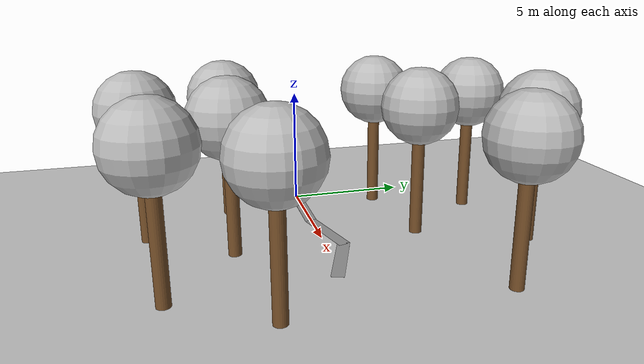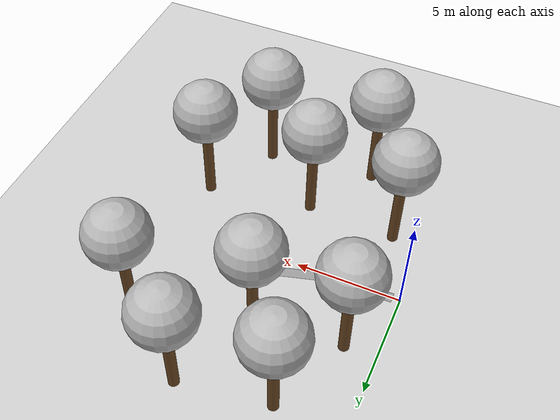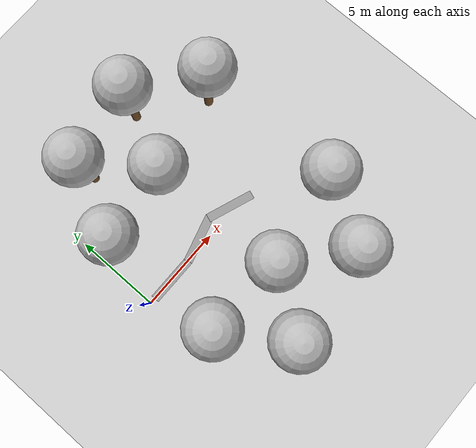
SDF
<sdf version="1.7">
 <world name="default">
  <physics type="ode">
   <ode>
    <solver>
     <type>quick</type>
     <iters>100</iters>
     <sor>1</sor>
     <use_dynamic_moi_rescaling>0</use_dynamic_moi_rescaling>
    </solver>
    <constraints>
     <cfm>0</cfm>
     <erp>0.9</erp>
     <contact_max_correcting_vel>0.1</contact_max_correcting_vel>
     <contact_surface_layer>0</contact_surface_layer>
    </constraints>
   </ode>
   <real_time_update_rate>-1</real_time_update_rate>
   <max_step_size>0.001</max_step_size>
   <real_time_factor>1</real_time_factor>
  </physics>
  <light name="sun" type="directional">
   <pose>0 0 10 0 -0 0</pose>
   <diffuse>0.8 0.8 0.8 1</diffuse>
   <specular>0.2 0.2 0.2 1</specular>
   <attenuation>
    <range>1000</range>
    <constant>0.9</constant>
    <linear>0.01</linear>
    <quadratic>0.001</quadratic>
   </attenuation>
   <direction>-0.5 0.1 -0.9</direction>
   <spot><inner_angle>0</inner_angle><outer_angle>0</outer_angle><falloff>0</falloff></spot>
  </light>
  <model name="ground_plane">
   <static>1</static>
   <link name="link">
    <collision name="collision">
     <geometry><plane><normal>0 0 1</normal><size>100 100</size></plane></geometry>
     <surface><friction><ode><mu>100</mu><mu2>50</mu2></ode></friction></surface>
    </collision>
    <visual name="visual">
     <cast_shadows>0</cast_shadows>
     <geometry><plane><normal>0 0 1</normal><size>100 100</size></plane></geometry>
     <material>
      <script><uri>file://media/materials/scripts/gazebo.material</uri><name>Gazebo/Grey</name></script>
     </material>
    </visual>
   </link>
  </model>
  <gravity>0 0 -9.8</gravity>
  <magnetic_field>6e-06 2.3e-05 -4.2e-05</magnetic_field>
  <atmosphere type="adiabatic"/>
  <scene><ambient>0.4 0.4 0.4 1</ambient><background>0.7 0.7 0.7 1</background><shadows>1</shadows></scene>
  <spherical_coordinates>
   <surface_model>EARTH_WGS84</surface_model>
   <latitude_deg>0</latitude_deg>
   <longitude_deg>0</longitude_deg>
   <elevation>0</elevation>
   <heading_deg>0</heading_deg>
  </spherical_coordinates>
  <model name="tree_simple">
   <static>1</static>
   <link name="link">
    <pose>0 0 0.1 0 -0 0</pose>
    <inertial>
     <mass>666</mass>
     <inertia>
      <ixx>0.0861167</ixx>
      <ixy>0</ixy>
      <ixz>0</ixz>
      <iyy>0.0861167</iyy>
      <iyz>0</iyz>
      <izz>0.0861167</izz>
     </inertia>
    </inertial>
    <collision name="collision_trunk">
     <pose>0 0 2 0 -0 0</pose>
     <geometry><cylinder><radius>0.25</radius><length>4</length></cylinder></geometry>
     <surface>
      <contact>
       <poissons_ratio>0.347</poissons_ratio>
       <elastic_modulus>8.8e+09</elastic_modulus>
       <ode><kp>100000</kp><kd>100</kd><max_vel>100</max_vel><min_depth>0.001</min_depth></ode>
      </contact>
      <friction>
       <torsional>
        <coefficient>1</coefficient>
        <use_patch_radius>0</use_patch_radius>
        <surface_radius>0.01</surface_radius>
       </torsional>
      </friction>
     </surface>
    </collision>
    <collision name="collision_treetop">
     <pose>0 0 5.2 0 -0 0</pose>
     <geometry><sphere><radius>1.5</radius></sphere></geometry>
     <surface>
      <contact>
       <poissons_ratio>0.347</poissons_ratio>
       <elastic_modulus>8.8e+09</elastic_modulus>
       <ode><kp>100000</kp><kd>100</kd><max_vel>100</max_vel><min_depth>0.001</min_depth></ode>
      </contact>
      <friction>
       <torsional>
        <coefficient>1</coefficient>
        <use_patch_radius>0</use_patch_radius>
        <surface_radius>0.01</surface_radius>
       </torsional>
      </friction>
     </surface>
    </collision>
    <visual name="trunk">
     <pose>0 0 2 0 -0 0</pose>
     <geometry><cylinder><radius>0.25</radius><length>4</length></cylinder></geometry>
     <material>
      <script>
       <uri>model://tree_simple/scripts</uri>
       <uri>model://tree_simple/materials/textures</uri>
       <name>TreeSimple/Trunk</name>
      </script>
     </material>
    </visual>
    <visual name="treetop">
     <pose>0 0 5.2 0 -0 0</pose>
     <geometry><sphere><radius>1.5</radius></sphere></geometry>
     <material>
      <script>
       <uri>model://tree_simple/scripts</uri>
       <uri>model://tree_simple/materials/textures</uri>
       <name>TreeSimple/Treetop</name>
      </script>
     </material>
    </visual>
   </link>
   <pose>1.44892 -3.29451 0 0 -0 0</pose>
  </model>
  <model name="tree_simple_clone">
   <static>1</static>
   <link name="link">
    <pose>0 0 0.1 0 -0 0</pose>
    <inertial>
     <mass>666</mass>
     <inertia>
      <ixx>0.0861167</ixx>
      <ixy>0</ixy>
      <ixz>0</ixz>
      <iyy>0.0861167</iyy>
      <iyz>0</iyz>
      <izz>0.0861167</izz>
     </inertia>
    </inertial>
    <collision name="collision_trunk">
     <pose>0 0 2 0 -0 0</pose>
     <geometry><cylinder><radius>0.25</radius><length>4</length></cylinder></geometry>
     <surface>
      <contact>
       <poissons_ratio>0.347</poissons_ratio>
       <elastic_modulus>8.8e+09</elastic_modulus>
       <ode><kp>100000</kp><kd>100</kd><max_vel>100</max_vel><min_depth>0.001</min_depth></ode>
      </contact>
      <friction>
       <torsional>
        <coefficient>1</coefficient>
        <use_patch_radius>0</use_patch_radius>
        <surface_radius>0.01</surface_radius>
       </torsional>
      </friction>
     </surface>
    </collision>
    <collision name="collision_treetop">
     <pose>0 0 5.2 0 -0 0</pose>
     <geometry><sphere><radius>1.5</radius></sphere></geometry>
     <surface>
      <contact>
       <poissons_ratio>0.347</poissons_ratio>
       <elastic_modulus>8.8e+09</elastic_modulus>
       <ode><kp>100000</kp><kd>100</kd><max_vel>100</max_vel><min_depth>0.001</min_depth></ode>
      </contact>
      <friction>
       <torsional>
        <coefficient>1</coefficient>
        <use_patch_radius>0</use_patch_radius>
        <surface_radius>0.01</surface_radius>
       </torsional>
      </friction>
     </surface>
    </collision>
    <visual name="trunk">
     <pose>0 0 2 0 -0 0</pose>
     <geometry><cylinder><radius>0.25</radius><length>4</length></cylinder></geometry>
     <material>
      <script>
       <uri>model://tree_simple/scripts</uri>
       <uri>model://tree_simple/materials/textures</uri>
       <name>TreeSimple/Trunk</name>
      </script>
     </material>
    </visual>
    <visual name="treetop">
     <pose>0 0 5.2 0 -0 0</pose>
     <geometry><sphere><radius>1.5</radius></sphere></geometry>
     <material>
      <script>
       <uri>model://tree_simple/scripts</uri>
       <uri>model://tree_simple/materials/textures</uri>
       <name>TreeSimple/Treetop</name>
      </script>
     </material>
    </visual>
   </link>
   <pose>5.79232 -3.49987 0 0 -0 0</pose>
  </model>
  <model name="tree_simple_clone_0">
   <static>1</static>
   <link name="link">
    <pose>0 0 0.1 0 -0 0</pose>
    <inertial>
     <mass>666</mass>
     <inertia>
      <ixx>0.0861167</ixx>
      <ixy>0</ixy>
      <ixz>0</ixz>
      <iyy>0.0861167</iyy>
      <iyz>0</iyz>
      <izz>0.0861167</izz>
     </inertia>
    </inertial>
    <collision name="collision_trunk">
     <pose>0 0 2 0 -0 0</pose>
     <geometry><cylinder><radius>0.25</radius><length>4</length></cylinder></geometry>
     <surface>
      <contact>
       <poissons_ratio>0.347</poissons_ratio>
       <elastic_modulus>8.8e+09</elastic_modulus>
       <ode><kp>100000</kp><kd>100</kd><max_vel>100</max_vel><min_depth>0.001</min_depth></ode>
      </contact>
      <friction>
       <torsional>
        <coefficient>1</coefficient>
        <use_patch_radius>0</use_patch_radius>
        <surface_radius>0.01</surface_radius>
       </torsional>
      </friction>
     </surface>
    </collision>
    <collision name="collision_treetop">
     <pose>0 0 5.2 0 -0 0</pose>
     <geometry><sphere><radius>1.5</radius></sphere></geometry>
     <surface>
      <contact>
       <poissons_ratio>0.347</poissons_ratio>
       <elastic_modulus>8.8e+09</elastic_modulus>
       <ode><kp>100000</kp><kd>100</kd><max_vel>100</max_vel><min_depth>0.001</min_depth></ode>
      </contact>
      <friction>
       <torsional>
        <coefficient>1</coefficient>
        <use_patch_radius>0</use_patch_radius>
        <surface_radius>0.01</surface_radius>
       </torsional>
      </friction>
     </surface>
    </collision>
    <visual name="trunk">
     <pose>0 0 2 0 -0 0</pose>
     <geometry><cylinder><radius>0.25</radius><length>4</length></cylinder></geometry>
     <material>
      <script>
       <uri>model://tree_simple/scripts</uri>
       <uri>model://tree_simple/materials/textures</uri>
       <name>TreeSimple/Trunk</name>
      </script>
     </material>
    </visual>
    <visual name="treetop">
     <pose>0 0 5.2 0 -0 0</pose>
     <geometry><sphere><radius>1.5</radius></sphere></geometry>
     <material>
      <script>
       <uri>model://tree_simple/scripts</uri>
       <uri>model://tree_simple/materials/textures</uri>
       <name>TreeSimple/Treetop</name>
      </script>
     </material>
    </visual>
   </link>
   <pose>10.8765 -2.68389 0 0 -0 0</pose>
  </model>
  <model name="tree_simple_clone_1">
   <static>1</static>
   <link name="link">
    <pose>0 0 0.1 0 -0 0</pose>
    <inertial>
     <mass>666</mass>
     <inertia>
      <ixx>0.0861167</ixx>
      <ixy>0</ixy>
      <ixz>0</ixz>
      <iyy>0.0861167</iyy>
      <iyz>0</iyz>
      <izz>0.0861167</izz>
     </inertia>
    </inertial>
    <collision name="collision_trunk">
     <pose>0 0 2 0 -0 0</pose>
     <geometry><cylinder><radius>0.25</radius><length>4</length></cylinder></geometry>
     <surface>
      <contact>
       <poissons_ratio>0.347</poissons_ratio>
       <elastic_modulus>8.8e+09</elastic_modulus>
       <ode><kp>100000</kp><kd>100</kd><max_vel>100</max_vel><min_depth>0.001</min_depth></ode>
      </contact>
      <friction>
       <torsional>
        <coefficient>1</coefficient>
        <use_patch_radius>0</use_patch_radius>
        <surface_radius>0.01</surface_radius>
       </torsional>
      </friction>
     </surface>
    </collision>
    <collision name="collision_treetop">
     <pose>0 0 5.2 0 -0 0</pose>
     <geometry><sphere><radius>1.5</radius></sphere></geometry>
     <surface>
      <contact>
       <poissons_ratio>0.347</poissons_ratio>
       <elastic_modulus>8.8e+09</elastic_modulus>
       <ode><kp>100000</kp><kd>100</kd><max_vel>100</max_vel><min_depth>0.001</min_depth></ode>
      </contact>
      <friction>
       <torsional>
        <coefficient>1</coefficient>
        <use_patch_radius>0</use_patch_radius>
        <surface_radius>0.01</surface_radius>
       </torsional>
      </friction>
     </surface>
    </collision>
    <visual name="trunk">
     <pose>0 0 2 0 -0 0</pose>
     <geometry><cylinder><radius>0.25</radius><length>4</length></cylinder></geometry>
     <material>
      <script>
       <uri>model://tree_simple/scripts</uri>
       <uri>model://tree_simple/materials/textures</uri>
       <name>TreeSimple/Trunk</name>
      </script>
     </material>
    </visual>
    <visual name="treetop">
     <pose>0 0 5.2 0 -0 0</pose>
     <geometry><sphere><radius>1.5</radius></sphere></geometry>
     <material>
      <script>
       <uri>model://tree_simple/scripts</uri>
       <uri>model://tree_simple/materials/textures</uri>
       <name>TreeSimple/Treetop</name>
      </script>
     </material>
    </visual>
   </link>
   <pose>1.4905 3.34156 0 0 -0 0</pose>
  </model>
  <model name="tree_simple_clone_2">
   <static>1</static>
   <link name="link">
    <pose>0 0 0.1 0 -0 0</pose>
    <inertial>
     <mass>666</mass>
     <inertia>
      <ixx>0.0861167</ixx>
      <ixy>0</ixy>
      <ixz>0</ixz>
      <iyy>0.0861167</iyy>
      <iyz>0</iyz>
      <izz>0.0861167</izz>
     </inertia>
    </inertial>
    <collision name="collision_trunk">
     <pose>0 0 2 0 -0 0</pose>
     <geometry><cylinder><radius>0.25</radius><length>4</length></cylinder></geometry>
     <surface>
      <contact>
       <poissons_ratio>0.347</poissons_ratio>
       <elastic_modulus>8.8e+09</elastic_modulus>
       <ode><kp>100000</kp><kd>100</kd><max_vel>100</max_vel><min_depth>0.001</min_depth></ode>
      </contact>
      <friction>
       <torsional>
        <coefficient>1</coefficient>
        <use_patch_radius>0</use_patch_radius>
        <surface_radius>0.01</surface_radius>
       </torsional>
      </friction>
     </surface>
    </collision>
    <collision name="collision_treetop">
     <pose>0 0 5.2 0 -0 0</pose>
     <geometry><sphere><radius>1.5</radius></sphere></geometry>
     <surface>
      <contact>
       <poissons_ratio>0.347</poissons_ratio>
       <elastic_modulus>8.8e+09</elastic_modulus>
       <ode><kp>100000</kp><kd>100</kd><max_vel>100</max_vel><min_depth>0.001</min_depth></ode>
      </contact>
      <friction>
       <torsional>
        <coefficient>1</coefficient>
        <use_patch_radius>0</use_patch_radius>
        <surface_radius>0.01</surface_radius>
       </torsional>
      </friction>
     </surface>
    </collision>
    <visual name="trunk">
     <pose>0 0 2 0 -0 0</pose>
     <geometry><cylinder><radius>0.25</radius><length>4</length></cylinder></geometry>
     <material>
      <script>
       <uri>model://tree_simple/scripts</uri>
       <uri>model://tree_simple/materials/textures</uri>
       <name>TreeSimple/Trunk</name>
      </script>
     </material>
    </visual>
    <visual name="treetop">
     <pose>0 0 5.2 0 -0 0</pose>
     <geometry><sphere><radius>1.5</radius></sphere></geometry>
     <material>
      <script>
       <uri>model://tree_simple/scripts</uri>
       <uri>model://tree_simple/materials/textures</uri>
       <name>TreeSimple/Treetop</name>
      </script>
     </material>
    </visual>
   </link>
   <pose>5.57941 3.81337 0 0 -0 0</pose>
  </model>
  <model name="tree_simple_clone_3">
   <static>1</static>
   <link name="link">
    <pose>0 0 0.1 0 -0 0</pose>
    <inertial>
     <mass>666</mass>
     <inertia>
      <ixx>0.0861167</ixx>
      <ixy>0</ixy>
      <ixz>0</ixz>
      <iyy>0.0861167</iyy>
      <iyz>0</iyz>
      <izz>0.0861167</izz>
     </inertia>
    </inertial>
    <collision name="collision_trunk">
     <pose>0 0 2 0 -0 0</pose>
     <geometry><cylinder><radius>0.25</radius><length>4</length></cylinder></geometry>
     <surface>
      <contact>
       <poissons_ratio>0.347</poissons_ratio>
       <elastic_modulus>8.8e+09</elastic_modulus>
       <ode><kp>100000</kp><kd>100</kd><max_vel>100</max_vel><min_depth>0.001</min_depth></ode>
      </contact>
      <friction>
       <torsional>
        <coefficient>1</coefficient>
        <use_patch_radius>0</use_patch_radius>
        <surface_radius>0.01</surface_radius>
       </torsional>
      </friction>
     </surface>
    </collision>
    <collision name="collision_treetop">
     <pose>0 0 5.2 0 -0 0</pose>
     <geometry><sphere><radius>1.5</radius></sphere></geometry>
     <surface>
      <contact>
       <poissons_ratio>0.347</poissons_ratio>
       <elastic_modulus>8.8e+09</elastic_modulus>
       <ode><kp>100000</kp><kd>100</kd><max_vel>100</max_vel><min_depth>0.001</min_depth></ode>
      </contact>
      <friction>
       <torsional>
        <coefficient>1</coefficient>
        <use_patch_radius>0</use_patch_radius>
        <surface_radius>0.01</surface_radius>
       </torsional>
      </friction>
     </surface>
    </collision>
    <visual name="trunk">
     <pose>0 0 2 0 -0 0</pose>
     <geometry><cylinder><radius>0.25</radius><length>4</length></cylinder></geometry>
     <material>
      <script>
       <uri>model://tree_simple/scripts</uri>
       <uri>model://tree_simple/materials/textures</uri>
       <name>TreeSimple/Trunk</name>
      </script>
     </material>
    </visual>
    <visual name="treetop">
     <pose>0 0 5.2 0 -0 0</pose>
     <geometry><sphere><radius>1.5</radius></sphere></geometry>
     <material>
      <script>
       <uri>model://tree_simple/scripts</uri>
       <uri>model://tree_simple/materials/textures</uri>
       <name>TreeSimple/Treetop</name>
      </script>
     </material>
    </visual>
   </link>
   <pose>10.8636 5.22877 0 0 -0 0</pose>
  </model>
  <model name="tree_simple_clone_8">
   <static>1</static>
   <link name="link">
    <pose>0 0 0.1 0 -0 0</pose>
    <inertial>
     <mass>666</mass>
     <inertia>
      <ixx>0.0861167</ixx>
      <ixy>0</ixy>
      <ixz>0</ixz>
      <iyy>0.0861167</iyy>
      <iyz>0</iyz>
      <izz>0.0861167</izz>
     </inertia>
    </inertial>
    <collision name="collision_trunk">
     <pose>0 0 2 0 -0 0</pose>
     <geometry><cylinder><radius>0.25</radius><length>4</length></cylinder></geometry>
     <surface>
      <contact>
       <poissons_ratio>0.347</poissons_ratio>
       <elastic_modulus>8.8e+09</elastic_modulus>
       <ode><kp>100000</kp><kd>100</kd><max_vel>100</max_vel><min_depth>0.001</min_depth></ode>
      </contact>
      <friction>
       <torsional>
        <coefficient>1</coefficient>
        <use_patch_radius>0</use_patch_radius>
        <surface_radius>0.01</surface_radius>
       </torsional>
      </friction>
     </surface>
    </collision>
    <collision name="collision_treetop">
     <pose>0 0 5.2 0 -0 0</pose>
     <geometry><sphere><radius>1.5</radius></sphere></geometry>
     <surface>
      <contact>
       <poissons_ratio>0.347</poissons_ratio>
       <elastic_modulus>8.8e+09</elastic_modulus>
       <ode><kp>100000</kp><kd>100</kd><max_vel>100</max_vel><min_depth>0.001</min_depth></ode>
      </contact>
      <friction>
       <torsional>
        <coefficient>1</coefficient>
        <use_patch_radius>0</use_patch_radius>
        <surface_radius>0.01</surface_radius>
       </torsional>
      </friction>
     </surface>
    </collision>
    <visual name="trunk">
     <pose>0 0 2 0 -0 0</pose>
     <geometry><cylinder><radius>0.25</radius><length>4</length></cylinder></geometry>
     <material>
      <script>
       <uri>model://tree_simple/scripts</uri>
       <uri>model://tree_simple/materials/textures</uri>
       <name>TreeSimple/Trunk</name>
      </script>
     </material>
    </visual>
    <visual name="treetop">
     <pose>0 0 5.2 0 -0 0</pose>
     <geometry><sphere><radius>1.5</radius></sphere></geometry>
     <material>
      <script>
       <uri>model://tree_simple/scripts</uri>
       <uri>model://tree_simple/materials/textures</uri>
       <name>TreeSimple/Treetop</name>
      </script>
     </material>
    </visual>
   </link>
   <pose>3.16384 7.13224 0 0 -0 0</pose>
  </model>
  <model name="tree_simple_clone_9">
   <static>1</static>
   <link name="link">
    <pose>0 0 0.1 0 -0 0</pose>
    <inertial>
     <mass>666</mass>
     <inertia>
      <ixx>0.0861167</ixx>
      <ixy>0</ixy>
      <ixz>0</ixz>
      <iyy>0.0861167</iyy>
      <iyz>0</iyz>
      <izz>0.0861167</izz>
     </inertia>
    </inertial>
    <collision name="collision_trunk">
     <pose>0 0 2 0 -0 0</pose>
     <geometry><cylinder><radius>0.25</radius><length>4</length></cylinder></geometry>
     <surface>
      <contact>
       <poissons_ratio>0.347</poissons_ratio>
       <elastic_modulus>8.8e+09</elastic_modulus>
       <ode><kp>100000</kp><kd>100</kd><max_vel>100</max_vel><min_depth>0.001</min_depth></ode>
      </contact>
      <friction>
       <torsional>
        <coefficient>1</coefficient>
        <use_patch_radius>0</use_patch_radius>
        <surface_radius>0.01</surface_radius>
       </torsional>
      </friction>
     </surface>
    </collision>
    <collision name="collision_treetop">
     <pose>0 0 5.2 0 -0 0</pose>
     <geometry><sphere><radius>1.5</radius></sphere></geometry>
     <surface>
      <contact>
       <poissons_ratio>0.347</poissons_ratio>
       <elastic_modulus>8.8e+09</elastic_modulus>
       <ode><kp>100000</kp><kd>100</kd><max_vel>100</max_vel><min_depth>0.001</min_depth></ode>
      </contact>
      <friction>
       <torsional>
        <coefficient>1</coefficient>
        <use_patch_radius>0</use_patch_radius>
        <surface_radius>0.01</surface_radius>
       </torsional>
      </friction>
     </surface>
    </collision>
    <visual name="trunk">
     <pose>0 0 2 0 -0 0</pose>
     <geometry><cylinder><radius>0.25</radius><length>4</length></cylinder></geometry>
     <material>
      <script>
       <uri>model://tree_simple/scripts</uri>
       <uri>model://tree_simple/materials/textures</uri>
       <name>TreeSimple/Trunk</name>
      </script>
     </material>
    </visual>
    <visual name="treetop">
     <pose>0 0 5.2 0 -0 0</pose>
     <geometry><sphere><radius>1.5</radius></sphere></geometry>
     <material>
      <script>
       <uri>model://tree_simple/scripts</uri>
       <uri>model://tree_simple/materials/textures</uri>
       <name>TreeSimple/Treetop</name>
      </script>
     </material>
    </visual>
   </link>
   <pose>7.41926 7.79415 0 0 -0 0</pose>
  </model>
  <model name="tree_simple_clone_10">
   <static>1</static>
   <link name="link">
    <pose>0 0 0.1 0 -0 0</pose>
    <inertial>
     <mass>666</mass>
     <inertia>
      <ixx>0.0861167</ixx>
      <ixy>0</ixy>
      <ixz>0</ixz>
      <iyy>0.0861167</iyy>
      <iyz>0</iyz>
      <izz>0.0861167</izz>
     </inertia>
    </inertial>
    <collision name="collision_trunk">
     <pose>0 0 2 0 -0 0</pose>
     <geometry><cylinder><radius>0.25</radius><length>4</length></cylinder></geometry>
     <surface>
      <contact>
       <poissons_ratio>0.347</poissons_ratio>
       <elastic_modulus>8.8e+09</elastic_modulus>
       <ode><kp>100000</kp><kd>100</kd><max_vel>100</max_vel><min_depth>0.001</min_depth></ode>
      </contact>
      <friction>
       <torsional>
        <coefficient>1</coefficient>
        <use_patch_radius>0</use_patch_radius>
        <surface_radius>0.01</surface_radius>
       </torsional>
      </friction>
     </surface>
    </collision>
    <collision name="collision_treetop">
     <pose>0 0 5.2 0 -0 0</pose>
     <geometry><sphere><radius>1.5</radius></sphere></geometry>
     <surface>
      <contact>
       <poissons_ratio>0.347</poissons_ratio>
       <elastic_modulus>8.8e+09</elastic_modulus>
       <ode><kp>100000</kp><kd>100</kd><max_vel>100</max_vel><min_depth>0.001</min_depth></ode>
      </contact>
      <friction>
       <torsional>
        <coefficient>1</coefficient>
        <use_patch_radius>0</use_patch_radius>
        <surface_radius>0.01</surface_radius>
       </torsional>
      </friction>
     </surface>
    </collision>
    <visual name="trunk">
     <pose>0 0 2 0 -0 0</pose>
     <geometry><cylinder><radius>0.25</radius><length>4</length></cylinder></geometry>
     <material>
      <script>
       <uri>model://tree_simple/scripts</uri>
       <uri>model://tree_simple/materials/textures</uri>
       <name>TreeSimple/Trunk</name>
      </script>
     </material>
    </visual>
    <visual name="treetop">
     <pose>0 0 5.2 0 -0 0</pose>
     <geometry><sphere><radius>1.5</radius></sphere></geometry>
     <material>
      <script>
       <uri>model://tree_simple/scripts</uri>
       <uri>model://tree_simple/materials/textures</uri>
       <name>TreeSimple/Treetop</name>
      </script>
     </material>
    </visual>
   </link>
   <pose>8.93205 -6.04376 0 0 -0 0</pose>
  </model>
  <model name="tree_simple_clone_11">
   <static>1</static>
   <link name="link">
    <pose>0 0 0.1 0 -0 0</pose>
    <inertial>
     <mass>666</mass>
     <inertia>
      <ixx>0.0861167</ixx>
      <ixy>0</ixy>
      <ixz>0</ixz>
      <iyy>0.0861167</iyy>
      <iyz>0</iyz>
      <izz>0.0861167</izz>
     </inertia>
    </inertial>
    <collision name="collision_trunk">
     <pose>0 0 2 0 -0 0</pose>
     <geometry><cylinder><radius>0.25</radius><length>4</length></cylinder></geometry>
     <surface>
      <contact>
       <poissons_ratio>0.347</poissons_ratio>
       <elastic_modulus>8.8e+09</elastic_modulus>
       <ode><kp>100000</kp><kd>100</kd><max_vel>100</max_vel><min_depth>0.001</min_depth></ode>
      </contact>
      <friction>
       <torsional>
        <coefficient>1</coefficient>
        <use_patch_radius>0</use_patch_radius>
        <surface_radius>0.01</surface_radius>
       </torsional>
      </friction>
     </surface>
    </collision>
    <collision name="collision_treetop">
     <pose>0 0 5.2 0 -0 0</pose>
     <geometry><sphere><radius>1.5</radius></sphere></geometry>
     <surface>
      <contact>
       <poissons_ratio>0.347</poissons_ratio>
       <elastic_modulus>8.8e+09</elastic_modulus>
       <ode><kp>100000</kp><kd>100</kd><max_vel>100</max_vel><min_depth>0.001</min_depth></ode>
      </contact>
      <friction>
       <torsional>
        <coefficient>1</coefficient>
        <use_patch_radius>0</use_patch_radius>
        <surface_radius>0.01</surface_radius>
       </torsional>
      </friction>
     </surface>
    </collision>
    <visual name="trunk">
     <pose>0 0 2 0 -0 0</pose>
     <geometry><cylinder><radius>0.25</radius><length>4</length></cylinder></geometry>
     <material>
      <script>
       <uri>model://tree_simple/scripts</uri>
       <uri>model://tree_simple/materials/textures</uri>
       <name>TreeSimple/Trunk</name>
      </script>
     </material>
    </visual>
    <visual name="treetop">
     <pose>0 0 5.2 0 -0 0</pose>
     <geometry><sphere><radius>1.5</radius></sphere></geometry>
     <material>
      <script>
       <uri>model://tree_simple/scripts</uri>
       <uri>model://tree_simple/materials/textures</uri>
       <name>TreeSimple/Treetop</name>
      </script>
     </material>
    </visual>
   </link>
   <pose>3.66797 -6.67427 0 0 -0 0</pose>
  </model>
  <model name="white_road">
   <pose>1.76427 1.3476 0 0 -0 0</pose>
   <link name="Wall_0">
    <collision name="Wall_0_Collision">
     <geometry><box><size>2.85 0.5 0.001</size></box></geometry>
     <pose>0 0 0.0005 0 -0 0</pose>
    </collision>
    <visual name="Wall_0_Visual">
     <pose>0 0 0.0005 0 -0 0</pose>
     <geometry><box><size>2.85 0.5 0.001</size></box></geometry>
     <material>
      <script><uri>file://media/materials/scripts/gazebo.material</uri><name>Gazebo/Grey</name></script>
      <ambient>1 1 1 1</ambient>
     </material>
     <meta><layer>0</layer></meta>
    </visual>
    <pose>0 -1.35 0 0 -0 3.14159</pose>
   </link>
   <static>1</static>
  </model>
  <model name="white_road_0">
   <pose>4.10506 1.66949 0 0 -0 0.271155</pose>
   <link name="Wall_0">
    <collision name="Wall_0_Collision">
     <geometry><box><size>2.85 0.5 0.001</size></box></geometry>
     <pose>0 0 0.0005 0 -0 0</pose>
    </collision>
    <visual name="Wall_0_Visual">
     <pose>0 0 0.0005 0 -0 0</pose>
     <geometry><box><size>2.85 0.5 0.001</size></box></geometry>
     <material>
      <script><uri>file://media/materials/scripts/gazebo.material</uri><name>Gazebo/Grey</name></script>
      <ambient>1 1 1 1</ambient>
     </material>
     <meta><layer>0</layer></meta>
    </visual>
    <pose>0 -1.35 0 0 -0 3.14159</pose>
   </link>
   <static>1</static>
  </model>
  <model name="white_road_1">
   <pose>7.48797 1.51558 0 0 0 -0.35385</pose>
   <link name="Wall_0">
    <collision name="Wall_0_Collision">
     <geometry><box><size>2.85 0.5 0.001</size></box></geometry>
     <pose>0 0 0.0005 0 -0 0</pose>
    </collision>
    <visual name="Wall_0_Visual">
     <pose>0 0 0.0005 0 -0 0</pose>
     <geometry><box><size>2.85 0.5 0.001</size></box></geometry>
     <material>
      <script><uri>file://media/materials/scripts/gazebo.material</uri><name>Gazebo/Grey</name></script>
      <ambient>1 1 1 1</ambient>
     </material>
     <meta><layer>0</layer></meta>
    </visual>
    <pose>0 -1.35 0 0 -0 3.14159</pose>
   </link>
   <static>1</static>
  </model>
  <light name="user_spot_light_0" type="spot">
   <pose>0.841853 -0.001799 1 0 -0 0</pose>
   <diffuse>0.5 0.5 0.5 1</diffuse>
   <specular>0.1 0.1 0.1 1</specular>
   <direction>0 0 -1</direction>
   <attenuation>
    <range>20</range>
    <constant>0.5</constant>
    <linear>0.01</linear>
    <quadratic>0.001</quadratic>
   </attenuation>
   <cast_shadows>0</cast_shadows>
   <spot><inner_angle>0.6</inner_angle><outer_angle>1</outer_angle><falloff>1</falloff></spot>
  </light>
  <light name="user_spot_light_0_clone" type="spot">
   <pose>1.38297 0.016584 0.8 0 -0 0</pose>
   <diffuse>0.498039 0.498039 0.498039 1</diffuse>
   <specular>0.0980392 0.0980392 0.0980392 1</specular>
   <direction>0 0 -1</direction>
   <attenuation>
    <range>20</range>
    <constant>0.5</constant>
    <linear>0.01</linear>
    <quadratic>0.001</quadratic>
   </attenuation>
   <cast_shadows>0</cast_shadows>
   <spot><inner_angle>0.6</inner_angle><outer_angle>1</outer_angle><falloff>1</falloff></spot>
  </light>
  <light name="user_spot_light_0_clone_0" type="spot">
   <pose>1.93285 0.016583 0.8 0 -0 0</pose>
   <diffuse>0.498039 0.498039 0.498039 1</diffuse>
   <specular>0.0980392 0.0980392 0.0980392 1</specular>
   <direction>0 0 -1</direction>
   <attenuation>
    <range>20</range>
    <constant>0.5</constant>
    <linear>0.01</linear>
    <quadratic>0.001</quadratic>
   </attenuation>
   <cast_shadows>0</cast_shadows>
   <spot><inner_angle>0.6</inner_angle><outer_angle>1</outer_angle><falloff>1</falloff></spot>
  </light>
  <light name="user_spot_light_0_clone_1" type="spot">
   <pose>2.03043 0.007726 0.8 0 -0 0</pose>
   <diffuse>0.498039 0.498039 0.498039 1</diffuse>
   <specular>0.0980392 0.0980392 0.0980392 1</specular>
   <direction>0 0 -1</direction>
   <attenuation>
    <range>20</range>
    <constant>0.5</constant>
    <linear>0.01</linear>
    <quadratic>0.001</quadratic>
   </attenuation>
   <cast_shadows>0</cast_shadows>
   <spot><inner_angle>0.6</inner_angle><outer_angle>1</outer_angle><falloff>1</falloff></spot>
  </light>
  <light name="user_spot_light_0_clone_2" type="spot">
   <pose>2.5537 0.007726 0.8 0 -0 0</pose>
   <diffuse>0.498039 0.498039 0.498039 1</diffuse>
   <specular>0.0980392 0.0980392 0.0980392 1</specular>
   <direction>0 0 -1</direction>
   <attenuation>
    <range>20</range>
    <constant>0.5</constant>
    <linear>0.01</linear>
    <quadratic>0.001</quadratic>
   </attenuation>
   <cast_shadows>0</cast_shadows>
   <spot><inner_angle>0.6</inner_angle><outer_angle>1</outer_angle><falloff>1</falloff></spot>
  </light>
  <light name="user_spot_light_0_clone_3" type="spot">
   <pose>3.16012 0.019265 0.8 0 -0 0</pose>
   <diffuse>0.498039 0.498039 0.498039 1</diffuse>
   <specular>0.0980392 0.0980392 0.0980392 1</specular>
   <direction>0 0 -1</direction>
   <attenuation>
    <range>20</range>
    <constant>0.5</constant>
    <linear>0.01</linear>
    <quadratic>0.001</quadratic>
   </attenuation>
   <cast_shadows>0</cast_shadows>
   <spot><inner_angle>0.6</inner_angle><outer_angle>1</outer_angle><falloff>1</falloff></spot>
  </light>
  <light name="user_spot_light_0_clone_1_clone" type="spot">
   <pose>4.68065 -1.33708 0.8 0 -0 0</pose>
   <diffuse>0.498039 0.498039 0.498039 1</diffuse>
   <specular>0.0980392 0.0980392 0.0980392 1</specular>
   <direction>0 0 -1</direction>
   <attenuation>
    <range>20</range>
    <constant>0.5</constant>
    <linear>0.01</linear>
    <quadratic>0.001</quadratic>
   </attenuation>
   <cast_shadows>0</cast_shadows>
   <spot><inner_angle>0.6</inner_angle><outer_angle>1</outer_angle><falloff>1</falloff></spot>
  </light>
  <light name="user_spot_light_0_clone_1_clone_0" type="spot">
   <pose>4.34355 -1.23793 0.8 0 -0 0</pose>
   <diffuse>0.498039 0.498039 0.498039 1</diffuse>
   <specular>0.0980392 0.0980392 0.0980392 1</specular>
   <direction>0 0 -1</direction>
   <attenuation>
    <range>20</range>
    <constant>0.5</constant>
    <linear>0.01</linear>
    <quadratic>0.001</quadratic>
   </attenuation>
   <cast_shadows>0</cast_shadows>
   <spot><inner_angle>0.6</inner_angle><outer_angle>1</outer_angle><falloff>1</falloff></spot>
  </light>
  <light name="user_spot_light_0_clone_1_clone_1" type="spot">
   <pose>3.64756 0.144095 0.8 0 -0 0</pose>
   <diffuse>0.498039 0.498039 0.498039 1</diffuse>
   <specular>0.0980392 0.0980392 0.0980392 1</specular>
   <direction>0 0 -1</direction>
   <attenuation>
    <range>20</range>
    <constant>0.5</constant>
    <linear>0.01</linear>
    <quadratic>0.001</quadratic>
   </attenuation>
   <cast_shadows>0</cast_shadows>
   <spot><inner_angle>0.6</inner_angle><outer_angle>1</outer_angle><falloff>1</falloff></spot>
  </light>
  <light name="user_spot_light_0_clone_1_clone_2" type="spot">
   <pose>4.13474 0.323057 0.8 0 -0 0</pose>
   <diffuse>0.498039 0.498039 0.498039 1</diffuse>
   <specular>0.0980392 0.0980392 0.0980392 1</specular>
   <direction>0 0 -1</direction>
   <attenuation>
    <range>20</range>
    <constant>0.5</constant>
    <linear>0.01</linear>
    <quadratic>0.001</quadratic>
   </attenuation>
   <cast_shadows>0</cast_shadows>
   <spot><inner_angle>0.6</inner_angle><outer_angle>1</outer_angle><falloff>1</falloff></spot>
  </light>
  <light name="user_spot_light_0_clone_1_clone_3" type="spot">
   <pose>4.54239 0.442365 0.8 0 -0 0</pose>
   <diffuse>0.498039 0.498039 0.498039 1</diffuse>
   <specular>0.0980392 0.0980392 0.0980392 1</specular>
   <direction>0 0 -1</direction>
   <attenuation>
    <range>20</range>
    <constant>0.5</constant>
    <linear>0.01</linear>
    <quadratic>0.001</quadratic>
   </attenuation>
   <cast_shadows>0</cast_shadows>
   <spot><inner_angle>0.6</inner_angle><outer_angle>1</outer_angle><falloff>1</falloff></spot>
  </light>
  <light name="user_spot_light_0_clone_1_clone_4" type="spot">
   <pose>5.01952 0.561522 0.8 0 -0 0</pose>
   <diffuse>0.498039 0.498039 0.498039 1</diffuse>
   <specular>0.0980392 0.0980392 0.0980392 1</specular>
   <direction>0 0 -1</direction>
   <attenuation>
    <range>20</range>
    <constant>0.5</constant>
    <linear>0.01</linear>
    <quadratic>0.001</quadratic>
   </attenuation>
   <cast_shadows>0</cast_shadows>
   <spot><inner_angle>0.6</inner_angle><outer_angle>1</outer_angle><falloff>1</falloff></spot>
  </light>
  <light name="user_spot_light_0_clone_1_clone_5" type="spot">
   <pose>5.59775 0.681158 0.8 0 -0 0</pose>
   <diffuse>0.498039 0.498039 0.498039 1</diffuse>
   <specular>0.0980392 0.0980392 0.0980392 1</specular>
   <direction>0 0 -1</direction>
   <attenuation>
    <range>20</range>
    <constant>0.5</constant>
    <linear>0.01</linear>
    <quadratic>0.001</quadratic>
   </attenuation>
   <cast_shadows>0</cast_shadows>
   <spot><inner_angle>0.6</inner_angle><outer_angle>1</outer_angle><falloff>1</falloff></spot>
  </light>
  <light name="user_spot_light_0_clone_1_clone_6" type="spot">
   <pose>6.08628 0.591431 0.8 0 -0 0</pose>
   <diffuse>0.498039 0.498039 0.498039 1</diffuse>
   <specular>0.0980392 0.0980392 0.0980392 1</specular>
   <direction>0 0 -1</direction>
   <attenuation>
    <range>20</range>
    <constant>0.5</constant>
    <linear>0.01</linear>
    <quadratic>0.001</quadratic>
   </attenuation>
   <cast_shadows>0</cast_shadows>
   <spot><inner_angle>0.6</inner_angle><outer_angle>1</outer_angle><falloff>1</falloff></spot>
  </light>
  <light name="user_spot_light_0_clone_1_clone_7" type="spot">
   <pose>6.47267 0.447923 0.8 0 -0 0</pose>
   <diffuse>0.498039 0.498039 0.498039 1</diffuse>
   <specular>0.0980392 0.0980392 0.0980392 1</specular>
   <direction>0 0 -1</direction>
   <attenuation>
    <range>20</range>
    <constant>0.5</constant>
    <linear>0.01</linear>
    <quadratic>0.001</quadratic>
   </attenuation>
   <cast_shadows>0</cast_shadows>
   <spot><inner_angle>0.6</inner_angle><outer_angle>1</outer_angle><falloff>1</falloff></spot>
  </light>
  <light name="user_spot_light_0_clone_1_clone_8" type="spot">
   <pose>6.89135 0.288421 0.8 0 -0 0</pose>
   <diffuse>0.498039 0.498039 0.498039 1</diffuse>
   <specular>0.0980392 0.0980392 0.0980392 1</specular>
   <direction>0 0 -1</direction>
   <attenuation>
    <range>20</range>
    <constant>0.5</constant>
    <linear>0.01</linear>
    <quadratic>0.001</quadratic>
   </attenuation>
   <cast_shadows>0</cast_shadows>
   <spot><inner_angle>0.6</inner_angle><outer_angle>1</outer_angle><falloff>1</falloff></spot>
  </light>
  <light name="user_spot_light_0_clone_1_clone_9" type="spot">
   <pose>7.26032 0.138863 0.8 0 -0 0</pose>
   <diffuse>0.498039 0.498039 0.498039 1</diffuse>
   <specular>0.0980392 0.0980392 0.0980392 1</specular>
   <direction>0 0 -1</direction>
   <attenuation>
    <range>20</range>
    <constant>0.5</constant>
    <linear>0.01</linear>
    <quadratic>0.001</quadratic>
   </attenuation>
   <cast_shadows>0</cast_shadows>
   <spot><inner_angle>0.6</inner_angle><outer_angle>1</outer_angle><falloff>1</falloff></spot>
  </light>
  <light name="user_spot_light_0_clone_1_clone_10" type="spot">
   <pose>7.66951 0.035328 0.8 0 -0 0</pose>
   <diffuse>0.498039 0.498039 0.498039 1</diffuse>
   <specular>0.0980392 0.0980392 0.0980392 1</specular>
   <direction>0 0 -1</direction>
   <attenuation>
    <range>20</range>
    <constant>0.5</constant>
    <linear>0.01</linear>
    <quadratic>0.001</quadratic>
   </attenuation>
   <cast_shadows>0</cast_shadows>
   <spot><inner_angle>0.6</inner_angle><outer_angle>1</outer_angle><falloff>1</falloff></spot>
  </light>
  <light name="user_spot_light_0_clone_1_clone_11" type="spot">
   <pose>8.0388 -0.14399 0.8 0 -0 0</pose>
   <diffuse>0.498039 0.498039 0.498039 1</diffuse>
   <specular>0.0980392 0.0980392 0.0980392 1</specular>
   <direction>0 0 -1</direction>
   <attenuation>
    <range>20</range>
    <constant>0.5</constant>
    <linear>0.01</linear>
    <quadratic>0.001</quadratic>
   </attenuation>
   <cast_shadows>0</cast_shadows>
   <spot><inner_angle>0.6</inner_angle><outer_angle>1</outer_angle><falloff>1</falloff></spot>
  </light>
  <light name="user_spot_light_1" type="spot">
   <pose>1.00702 0.016631 1 0 -0 0</pose>
   <diffuse>0.5 0.5 0.5 1</diffuse>
   <specular>0.1 0.1 0.1 1</specular>
   <direction>0 0 -1</direction>
   <attenuation>
    <range>20</range>
    <constant>0.5</constant>
    <linear>0.01</linear>
    <quadratic>0.001</quadratic>
   </attenuation>
   <cast_shadows>0</cast_shadows>
   <spot><inner_angle>0.6</inner_angle><outer_angle>1</outer_angle><falloff>1</falloff></spot>
  </light>
  <light name="user_spot_light_2" type="spot">
   <pose>1.591 0.016631 1 0 -0 0</pose>
   <diffuse>0.5 0.5 0.5 1</diffuse>
   <specular>0.1 0.1 0.1 1</specular>
   <direction>0 0 -1</direction>
   <attenuation>
    <range>20</range>
    <constant>0.5</constant>
    <linear>0.01</linear>
    <quadratic>0.001</quadratic>
   </attenuation>
   <cast_shadows>0</cast_shadows>
   <spot><inner_angle>0.6</inner_angle><outer_angle>1</outer_angle><falloff>1</falloff></spot>
  </light>
  <light name="user_spot_light_3" type="spot">
   <pose>2.35264 0.025094 1 0 -0 0</pose>
   <diffuse>0.5 0.5 0.5 1</diffuse>
   <specular>0.1 0.1 0.1 1</specular>
   <direction>0 0 -1</direction>
   <attenuation>
    <range>20</range>
    <constant>0.5</constant>
    <linear>0.01</linear>
    <quadratic>0.001</quadratic>
   </attenuation>
   <cast_shadows>0</cast_shadows>
   <spot><inner_angle>0.6</inner_angle><outer_angle>1</outer_angle><falloff>1</falloff></spot>
  </light>
  <light name="user_spot_light_4" type="spot">
   <pose>2.86892 0.033557 1 0 -0 0</pose>
   <diffuse>0.5 0.5 0.5 1</diffuse>
   <specular>0.1 0.1 0.1 1</specular>
   <direction>0 0 -1</direction>
   <attenuation>
    <range>20</range>
    <constant>0.5</constant>
    <linear>0.01</linear>
    <quadratic>0.001</quadratic>
   </attenuation>
   <cast_shadows>0</cast_shadows>
   <spot><inner_angle>0.6</inner_angle><outer_angle>1</outer_angle><falloff>1</falloff></spot>
  </light>
  <light name="user_spot_light_5" type="spot">
   <pose>3.36821 0.109722 1 0 -0 0</pose>
   <diffuse>0.5 0.5 0.5 1</diffuse>
   <specular>0.1 0.1 0.1 1</specular>
   <direction>0 0 -1</direction>
   <attenuation>
    <range>20</range>
    <constant>0.5</constant>
    <linear>0.01</linear>
    <quadratic>0.001</quadratic>
   </attenuation>
   <cast_shadows>0</cast_shadows>
   <spot><inner_angle>0.6</inner_angle><outer_angle>1</outer_angle><falloff>1</falloff></spot>
  </light>
  <light name="user_spot_light_6" type="spot">
   <pose>3.97759 0.278993 1 0 -0 0</pose>
   <diffuse>0.5 0.5 0.5 1</diffuse>
   <specular>0.1 0.1 0.1 1</specular>
   <direction>0 0 -1</direction>
   <attenuation>
    <range>20</range>
    <constant>0.5</constant>
    <linear>0.01</linear>
    <quadratic>0.001</quadratic>
   </attenuation>
   <cast_shadows>0</cast_shadows>
   <spot><inner_angle>0.6</inner_angle><outer_angle>1</outer_angle><falloff>1</falloff></spot>
  </light>
  <light name="user_spot_light_7" type="spot">
   <pose>4.42608 0.397472 1 0 -0 0</pose>
   <diffuse>0.5 0.5 0.5 1</diffuse>
   <specular>0.1 0.1 0.1 1</specular>
   <direction>0 0 -1</direction>
   <attenuation>
    <range>20</range>
    <constant>0.5</constant>
    <linear>0.01</linear>
    <quadratic>0.001</quadratic>
   </attenuation>
   <cast_shadows>0</cast_shadows>
   <spot><inner_angle>0.6</inner_angle><outer_angle>1</outer_angle><falloff>1</falloff></spot>
  </light>
  <light name="user_spot_light_8" type="spot">
   <pose>4.89157 0.499026 1 0 -0 0</pose>
   <diffuse>0.5 0.5 0.5 1</diffuse>
   <specular>0.1 0.1 0.1 1</specular>
   <direction>0 0 -1</direction>
   <attenuation>
    <range>20</range>
    <constant>0.5</constant>
    <linear>0.01</linear>
    <quadratic>0.001</quadratic>
   </attenuation>
   <cast_shadows>0</cast_shadows>
   <spot><inner_angle>0.6</inner_angle><outer_angle>1</outer_angle><falloff>1</falloff></spot>
  </light>
  <light name="user_spot_light_9" type="spot">
   <pose>5.46705 0.685215 1 0 -0 0</pose>
   <diffuse>0.5 0.5 0.5 1</diffuse>
   <specular>0.1 0.1 0.1 1</specular>
   <direction>0 0 -1</direction>
   <attenuation>
    <range>20</range>
    <constant>0.5</constant>
    <linear>0.01</linear>
    <quadratic>0.001</quadratic>
   </attenuation>
   <cast_shadows>0</cast_shadows>
   <spot><inner_angle>0.6</inner_angle><outer_angle>1</outer_angle><falloff>1</falloff></spot>
  </light>
  <light name="user_spot_light_10" type="spot">
   <pose>5.85616 0.669963 1 0 -0 0</pose>
   <diffuse>0.5 0.5 0.5 1</diffuse>
   <specular>0.1 0.1 0.1 1</specular>
   <direction>0 0 -1</direction>
   <attenuation>
    <range>20</range>
    <constant>0.5</constant>
    <linear>0.01</linear>
    <quadratic>0.001</quadratic>
   </attenuation>
   <cast_shadows>0</cast_shadows>
   <spot><inner_angle>0.6</inner_angle><outer_angle>1</outer_angle><falloff>1</falloff></spot>
  </light>
  <light name="user_spot_light_11" type="spot">
   <pose>6.15472 0.577547 1 0 -0 0</pose>
   <diffuse>0.5 0.5 0.5 1</diffuse>
   <specular>0.1 0.1 0.1 1</specular>
   <direction>0 0 -1</direction>
   <attenuation>
    <range>20</range>
    <constant>0.5</constant>
    <linear>0.01</linear>
    <quadratic>0.001</quadratic>
   </attenuation>
   <cast_shadows>0</cast_shadows>
   <spot><inner_angle>0.6</inner_angle><outer_angle>1</outer_angle><falloff>1</falloff></spot>
  </light>
  <light name="user_spot_light_12" type="spot">
   <pose>6.63098 0.378493 1 0 -0 0</pose>
   <diffuse>0.5 0.5 0.5 1</diffuse>
   <specular>0.1 0.1 0.1 1</specular>
   <direction>0 0 -1</direction>
   <attenuation>
    <range>20</range>
    <constant>0.5</constant>
    <linear>0.01</linear>
    <quadratic>0.001</quadratic>
   </attenuation>
   <cast_shadows>0</cast_shadows>
   <spot><inner_angle>0.6</inner_angle><outer_angle>1</outer_angle><falloff>1</falloff></spot>
  </light>
  <light name="user_spot_light_13" type="spot">
   <pose>6.97225 0.278966 1 0 -0 0</pose>
   <diffuse>0.5 0.5 0.5 1</diffuse>
   <specular>0.1 0.1 0.1 1</specular>
   <direction>0 0 -1</direction>
   <attenuation>
    <range>20</range>
    <constant>0.5</constant>
    <linear>0.01</linear>
    <quadratic>0.001</quadratic>
   </attenuation>
   <cast_shadows>0</cast_shadows>
   <spot><inner_angle>0.6</inner_angle><outer_angle>1</outer_angle><falloff>1</falloff></spot>
  </light>
  <light name="user_spot_light_14" type="spot">
   <pose>7.26373 0.151 1 0 -0 0</pose>
   <diffuse>0.5 0.5 0.5 1</diffuse>
   <specular>0.1 0.1 0.1 1</specular>
   <direction>0 0 -1</direction>
   <attenuation>
    <range>20</range>
    <constant>0.5</constant>
    <linear>0.01</linear>
    <quadratic>0.001</quadratic>
   </attenuation>
   <cast_shadows>0</cast_shadows>
   <spot><inner_angle>0.6</inner_angle><outer_angle>1</outer_angle><falloff>1</falloff></spot>
  </light>
  <light name="user_spot_light_15" type="spot">
   <pose>7.6547 0.065696 1 0 -0 0</pose>
   <diffuse>0.5 0.5 0.5 1</diffuse>
   <specular>0.1 0.1 0.1 1</specular>
   <direction>0 0 -1</direction>
   <attenuation>
    <range>20</range>
    <constant>0.5</constant>
    <linear>0.01</linear>
    <quadratic>0.001</quadratic>
   </attenuation>
   <cast_shadows>0</cast_shadows>
   <spot><inner_angle>0.6</inner_angle><outer_angle>1</outer_angle><falloff>1</falloff></spot>
  </light>
  <light name="user_spot_light_16" type="spot">
   <pose>8.13104 -0.168905 1 0 -0 0</pose>
   <diffuse>0.5 0.5 0.5 1</diffuse>
   <specular>0.1 0.1 0.1 1</specular>
   <direction>0 0 -1</direction>
   <attenuation>
    <range>20</range>
    <constant>0.5</constant>
    <linear>0.01</linear>
    <quadratic>0.001</quadratic>
   </attenuation>
   <cast_shadows>0</cast_shadows>
   <spot><inner_angle>0.6</inner_angle><outer_angle>1</outer_angle><falloff>1</falloff></spot>
  </light>
  <light name="user_spot_light_17" type="spot">
   <pose>0.684485 0.015273 1 0 -0 0</pose>
   <diffuse>0.5 0.5 0.5 1</diffuse>
   <specular>0.1 0.1 0.1 1</specular>
   <direction>0 0 -1</direction>
   <attenuation>
    <range>20</range>
    <constant>0.5</constant>
    <linear>0.01</linear>
    <quadratic>0.001</quadratic>
   </attenuation>
   <cast_shadows>0</cast_shadows>
   <spot><inner_angle>0.6</inner_angle><outer_angle>1</outer_angle><falloff>1</falloff></spot>
  </light>
  <light name="user_spot_light_18" type="spot">
   <pose>1.64109 0.023519 1 0 -0 0</pose>
   <diffuse>0.5 0.5 0.5 1</diffuse>
   <specular>0.1 0.1 0.1 1</specular>
   <direction>0 0 -1</direction>
   <attenuation>
    <range>20</range>
    <constant>0.5</constant>
    <linear>0.01</linear>
    <quadratic>0.001</quadratic>
   </attenuation>
   <cast_shadows>0</cast_shadows>
   <spot><inner_angle>0.6</inner_angle><outer_angle>1</outer_angle><falloff>1</falloff></spot>
  </light>
 </world>
</sdf>
